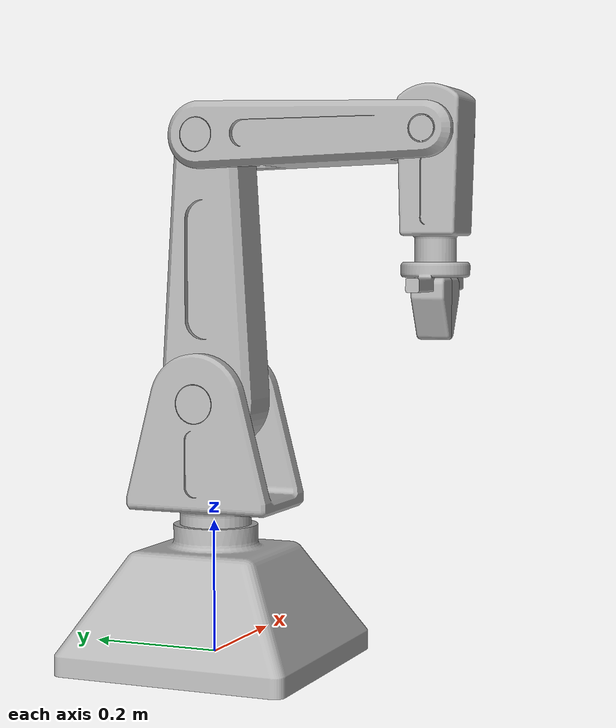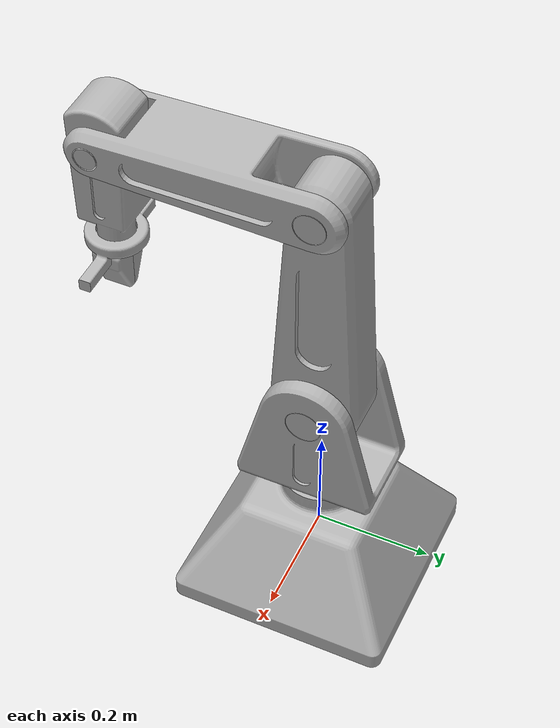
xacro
<?xml version="1.0" ?>
<robot name="Robotic" xmlns:xacro="http://www.ros.org/wiki/xacro">

<xacro:include filename="$(find Robotic_description)/urdf/materials.xacro" />
<xacro:include filename="$(find Robotic_description)/urdf/Robotic.trans" />
<xacro:include filename="$(find Robotic_description)/urdf/Robotic.gazebo" />
<link name="base_link">
  <inertial>
    <origin xyz="0.046816665715645175 0.0194774380889958 0.04653681071173116" rpy="0 0 0"/>
    <mass value="134.6008994581137"/>
    <inertia ixx="1.507214" iyy="1.507212" izz="2.319209" ixy="0.0" iyz="-0.0" ixz="0.0"/>
  </inertial>
  <visual>
    <origin xyz="0 0 0" rpy="0 0 0"/>
    <geometry>
      <mesh filename="package://Robotic_description/meshes/base_link.stl" scale="0.001 0.001 0.001"/>
    </geometry>
    <material name="silver"/>
  </visual>
  <collision>
    <origin xyz="0 0 0" rpy="0 0 0"/>
    <geometry>
      <mesh filename="package://Robotic_description/meshes/base_link.stl" scale="0.001 0.001 0.001"/>
    </geometry>
  </collision>
</link>

<link name="Link_1_v1_1">
  <inertial>
    <origin xyz="-3.342835710393177e-07 4.3808844369525035e-07 0.11046587827703525" rpy="0 0 0"/>
    <mass value="24.26013615647343"/>
    <inertia ixx="0.199295" iyy="0.206469" izz="0.154111" ixy="-0.0" iyz="-0.0" ixz="0.0"/>
  </inertial>
  <visual>
    <origin xyz="-0.046817 -0.019477 -0.172661" rpy="0 0 0"/>
    <geometry>
      <mesh filename="package://Robotic_description/meshes/Link_1_v1_1.stl" scale="0.001 0.001 0.001"/>
    </geometry>
    <material name="silver"/>
  </visual>
  <collision>
    <origin xyz="-0.046817 -0.019477 -0.172661" rpy="0 0 0"/>
    <geometry>
      <mesh filename="package://Robotic_description/meshes/Link_1_v1_1.stl" scale="0.001 0.001 0.001"/>
    </geometry>
  </collision>
</link>

<link name="Link_2_v1_1">
  <inertial>
    <origin xyz="-0.08000033428435491 4.380889954760936e-07 0.16751758140555828" rpy="0 0 0"/>
    <mass value="43.85541122394371"/>
    <inertia ixx="1.01355" iyy="0.991645" izz="0.089496" ixy="-0.0" iyz="0.0" ixz="0.0"/>
  </inertial>
  <visual>
    <origin xyz="-0.126817 -0.019477 -0.377661" rpy="0 0 0"/>
    <geometry>
      <mesh filename="package://Robotic_description/meshes/Link_2_v1_1.stl" scale="0.001 0.001 0.001"/>
    </geometry>
    <material name="silver"/>
  </visual>
  <collision>
    <origin xyz="-0.126817 -0.019477 -0.377661" rpy="0 0 0"/>
    <geometry>
      <mesh filename="package://Robotic_description/meshes/Link_2_v1_1.stl" scale="0.001 0.001 0.001"/>
    </geometry>
  </collision>
</link>

<link name="Link_3_v1_1">
  <inertial>
    <origin xyz="-0.07000035750522957 -0.17892982405891494 -2.2931023335726053e-07" rpy="0 0 0"/>
    <mass value="22.185631540530217"/>
    <inertia ixx="0.197256" iyy="0.058122" izz="0.22413" ixy="0.0" iyz="0.0" ixz="-0.0"/>
  </inertial>
  <visual>
    <origin xyz="-0.116817 -0.019477 -0.777661" rpy="0 0 0"/>
    <geometry>
      <mesh filename="package://Robotic_description/meshes/Link_3_v1_1.stl" scale="0.001 0.001 0.001"/>
    </geometry>
    <material name="silver"/>
  </visual>
  <collision>
    <origin xyz="-0.116817 -0.019477 -0.777661" rpy="0 0 0"/>
    <geometry>
      <mesh filename="package://Robotic_description/meshes/Link_3_v1_1.stl" scale="0.001 0.001 0.001"/>
    </geometry>
  </collision>
</link>

<link name="Link_4_v1_1">
  <inertial>
    <origin xyz="-0.07000033428435479 4.3808899563568815e-07 -0.051672401006681246" rpy="0 0 0"/>
    <mass value="14.20649594400989"/>
    <inertia ixx="0.073718" iyy="0.07544" izz="0.018143" ixy="-0.0" iyz="-0.0" ixz="-0.0"/>
  </inertial>
  <visual>
    <origin xyz="-0.116817 0.330523 -0.777661" rpy="0 0 0"/>
    <geometry>
      <mesh filename="package://Robotic_description/meshes/Link_4_v1_1.stl" scale="0.001 0.001 0.001"/>
    </geometry>
    <material name="silver"/>
  </visual>
  <collision>
    <origin xyz="-0.116817 0.330523 -0.777661" rpy="0 0 0"/>
    <geometry>
      <mesh filename="package://Robotic_description/meshes/Link_4_v1_1.stl" scale="0.001 0.001 0.001"/>
    </geometry>
  </collision>
</link>

<link name="Link_5_v1_1">
  <inertial>
    <origin xyz="-3.3392736802778655e-07 4.380157825889519e-07 -0.008023572845980653" rpy="0 0 0"/>
    <mass value="1.6804563040083742"/>
    <inertia ixx="0.000971" iyy="0.003337" izz="0.003887" ixy="0.0" iyz="-0.0" ixz="-0.0"/>
  </inertial>
  <visual>
    <origin xyz="-0.046817 0.330523 -0.577661" rpy="0 0 0"/>
    <geometry>
      <mesh filename="package://Robotic_description/meshes/Link_5_v1_1.stl" scale="0.001 0.001 0.001"/>
    </geometry>
    <material name="silver"/>
  </visual>
  <collision>
    <origin xyz="-0.046817 0.330523 -0.577661" rpy="0 0 0"/>
    <geometry>
      <mesh filename="package://Robotic_description/meshes/Link_5_v1_1.stl" scale="0.001 0.001 0.001"/>
    </geometry>
  </collision>
</link>

<link name="Gripper_1_1">
  <inertial>
    <origin xyz="0.5316476888269893 0.7305224380889934 -0.649184801208342" rpy="0 0 0"/>
    <mass value="0.9147834046702493"/>
    <inertia ixx="0.000666" iyy="0.000559" izz="0.000308" ixy="-0.0" iyz="0.0" ixz="8.1e-05"/>
  </inertial>
  <visual>
    <origin xyz="0.500844 1.061045 -1.176477" rpy="0 0 0"/>
    <geometry>
      <mesh filename="package://Robotic_description/meshes/Gripper_1_1.stl" scale="0.001 0.001 0.001"/>
    </geometry>
    <material name="silver"/>
  </visual>
  <collision>
    <origin xyz="0.500844 1.061045 -1.176477" rpy="0 0 0"/>
    <geometry>
      <mesh filename="package://Robotic_description/meshes/Gripper_1_1.stl" scale="0.001 0.001 0.001"/>
    </geometry>
  </collision>
</link>

<link name="Gripper_2_1">
  <inertial>
    <origin xyz="0.563673642604301 0.7305224380889961 -0.6491848012083448" rpy="0 0 0"/>
    <mass value="0.9147834046702445"/>
    <inertia ixx="0.000666" iyy="0.000559" izz="0.000308" ixy="-0.0" iyz="-0.0" ixz="-8.1e-05"/>
  </inertial>
  <visual>
    <origin xyz="0.500844 1.061045 -1.176477" rpy="0 0 0"/>
    <geometry>
      <mesh filename="package://Robotic_description/meshes/Gripper_2_1.stl" scale="0.001 0.001 0.001"/>
    </geometry>
    <material name="silver"/>
  </visual>
  <collision>
    <origin xyz="0.500844 1.061045 -1.176477" rpy="0 0 0"/>
    <geometry>
      <mesh filename="package://Robotic_description/meshes/Gripper_2_1.stl" scale="0.001 0.001 0.001"/>
    </geometry>
  </collision>
</link>

<joint name="Joint_1" type="revolute">
  <origin xyz="0.046817 0.019477 0.172661" rpy="0 0 0"/>
  <parent link="base_link"/>
  <child link="Link_1_v1_1"/>
  <axis xyz="0.0 -0.0 1.0"/>
  <limit upper="6.283185" lower="0.0" effort="100" velocity="100"/>
</joint>

<joint name="Joint_2" type="revolute">
  <origin xyz="0.08 0.0 0.205" rpy="0 0 0"/>
  <parent link="Link_1_v1_1"/>
  <child link="Link_2_v1_1"/>
  <axis xyz="1.0 0.0 0.0"/>
  <limit upper="1.570796" lower="-1.570796" effort="100" velocity="100"/>
</joint>

<joint name="Joint_3" type="revolute">
  <origin xyz="-0.01 0.0 0.4" rpy="0 0 0"/>
  <parent link="Link_2_v1_1"/>
  <child link="Link_3_v1_1"/>
  <axis xyz="1.0 0.0 0.0"/>
  <limit upper="0.0" lower="-3.141593" effort="100" velocity="100"/>
</joint>

<joint name="Joint_4" type="revolute">
  <origin xyz="0.0 -0.35 0.0" rpy="0 0 0"/>
  <parent link="Link_3_v1_1"/>
  <child link="Link_4_v1_1"/>
  <axis xyz="1.0 0.0 0.0"/>
  <limit upper="0.0" lower="-3.141593" effort="100" velocity="100"/>
</joint>

<joint name="Joint_5" type="revolute">
  <origin xyz="-0.07 0.0 -0.2" rpy="0 0 0"/>
  <parent link="Link_4_v1_1"/>
  <child link="Link_5_v1_1"/>
  <axis xyz="0.0 0.0 -1.0"/>
  <limit upper="6.283185" lower="0.0" effort="100" velocity="100"/>
</joint>

<joint name="Slider_1" type="prismatic">
  <origin xyz="-0.547661 -0.730522 0.598816" rpy="0 0 0"/>
  <parent link="Link_5_v1_1"/>
  <child link="Gripper_1_1"/>
  <axis xyz="-1.0 -0.0 0.0"/>
  <limit upper="0.08" lower="0.0" effort="100" velocity="100"/>
</joint>

<joint name="Slide4_2" type="prismatic">
  <origin xyz="-0.547661 -0.730522 0.598816" rpy="0 0 0"/>
  <parent link="Link_5_v1_1"/>
  <child link="Gripper_2_1"/>
  <axis xyz="-1.0 -0.0 0.0"/>
  <limit upper="0.0" lower="-0.08" effort="100" velocity="100"/>
</joint>

</robot>

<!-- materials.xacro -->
<robot name="Robotic" xmlns:xacro="http://www.ros.org/wiki/xacro" >

<material name="silver">
  <color rgba="0.700 0.700 0.700 1.000"/>
</material>

</robot>

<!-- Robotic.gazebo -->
<robot name="Robotic" xmlns:xacro="http://www.ros.org/wiki/xacro" >

<xacro:property name="body_color" value="Gazebo/Silver" />

<gazebo>
  <plugin name="control" filename="libgazebo_ros_control.so"/>
</gazebo>
<gazebo reference="base_link">
  <material>${body_color}</material>
  <mu1>0.2</mu1>
  <mu2>0.2</mu2>
  <selfCollide>true</selfCollide>
  <gravity>true</gravity>
</gazebo>

<gazebo reference="Link_1_v1_1">
  <material>${body_color}</material>
  <mu1>0.2</mu1>
  <mu2>0.2</mu2>
  <selfCollide>true</selfCollide>
</gazebo>

<gazebo reference="Link_2_v1_1">
  <material>${body_color}</material>
  <mu1>0.2</mu1>
  <mu2>0.2</mu2>
  <selfCollide>true</selfCollide>
</gazebo>

<gazebo reference="Link_3_v1_1">
  <material>${body_color}</material>
  <mu1>0.2</mu1>
  <mu2>0.2</mu2>
  <selfCollide>true</selfCollide>
</gazebo>

<gazebo reference="Link_4_v1_1">
  <material>${body_color}</material>
  <mu1>0.2</mu1>
  <mu2>0.2</mu2>
  <selfCollide>true</selfCollide>
</gazebo>

<gazebo reference="Link_5_v1_1">
  <material>${body_color}</material>
  <mu1>0.2</mu1>
  <mu2>0.2</mu2>
  <selfCollide>true</selfCollide>
</gazebo>

<gazebo reference="Gripper_1_1">
  <material>${body_color}</material>
  <mu1>0.2</mu1>
  <mu2>0.2</mu2>
  <selfCollide>true</selfCollide>
</gazebo>

<gazebo reference="Gripper_2_1">
  <material>${body_color}</material>
  <mu1>0.2</mu1>
  <mu2>0.2</mu2>
  <selfCollide>true</selfCollide>
</gazebo>

</robot>
